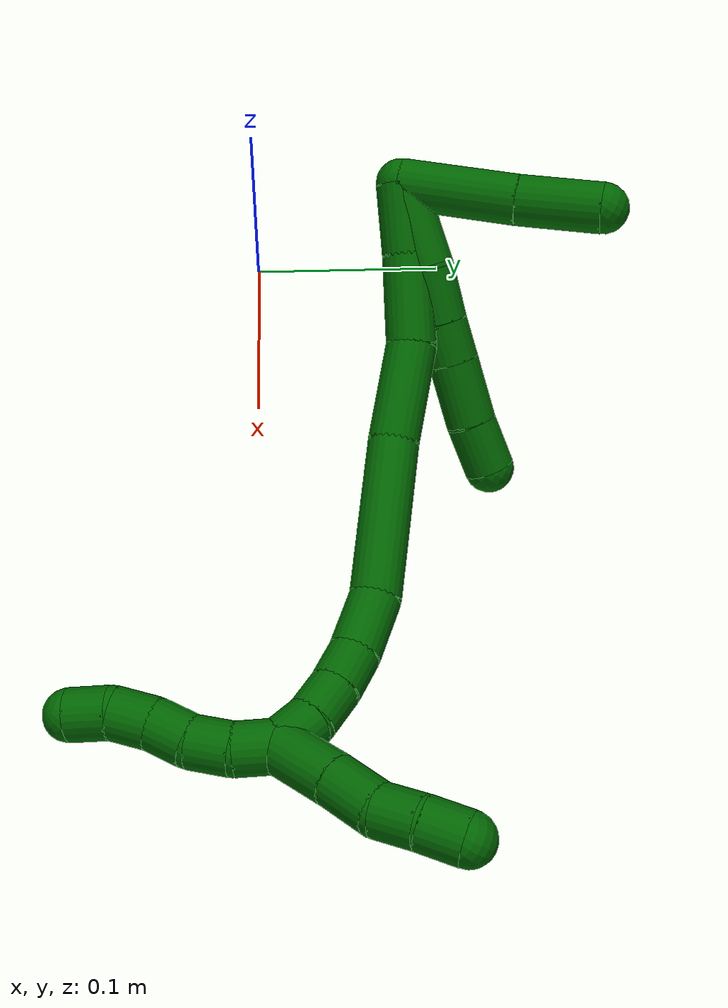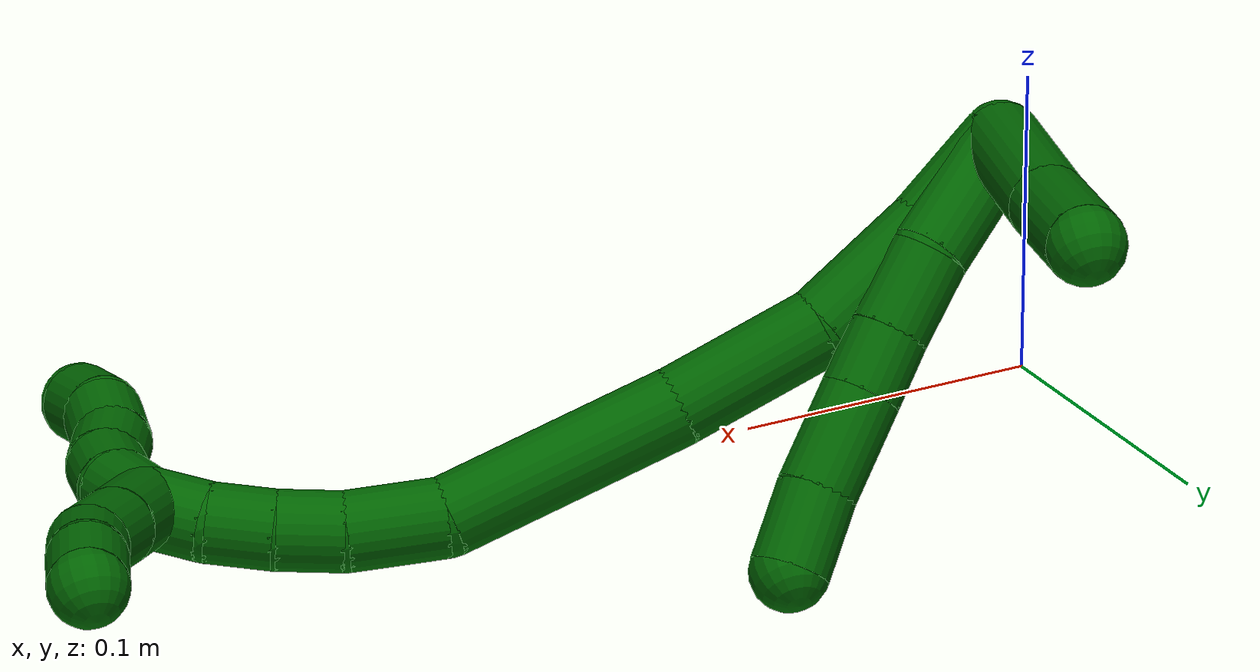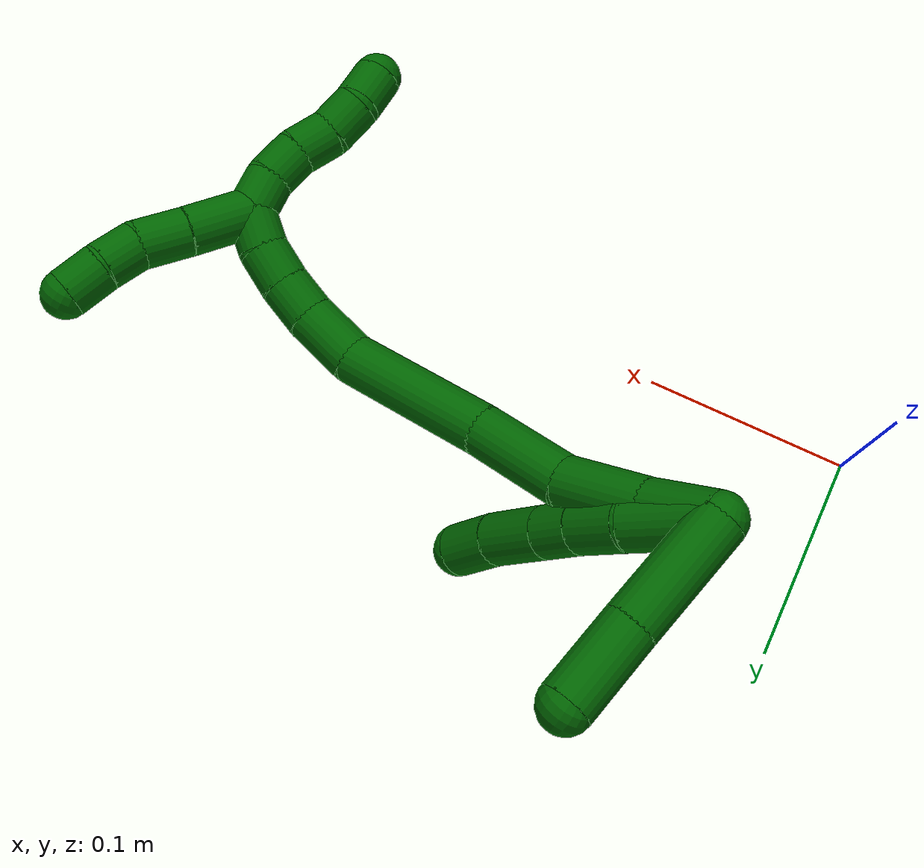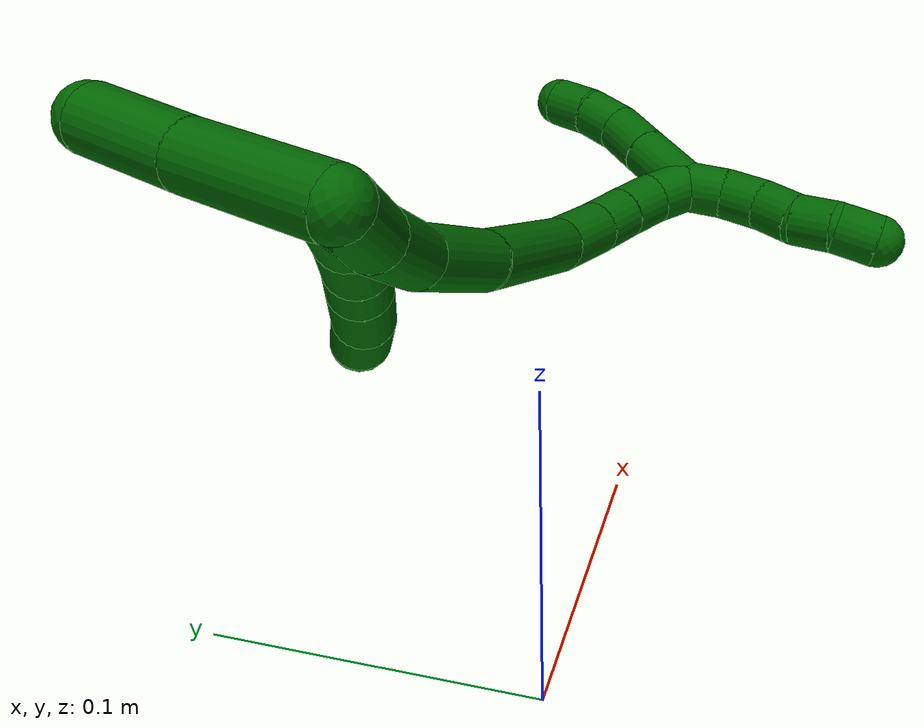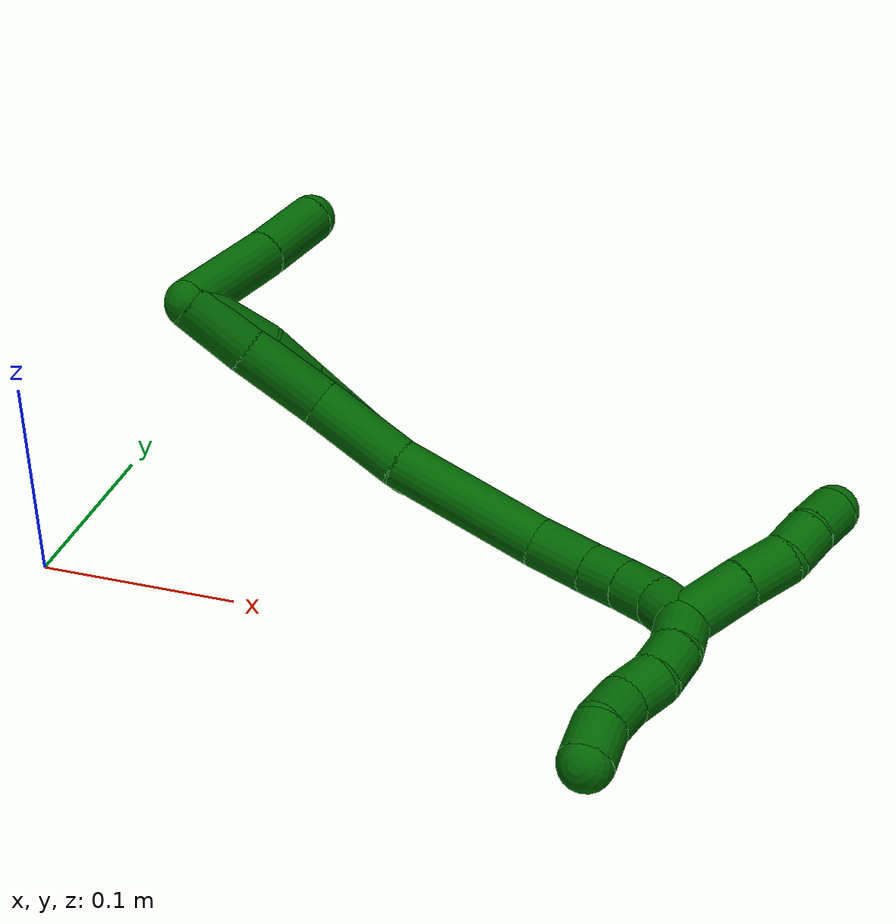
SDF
<sdf version="1.7">
 <world name="default">
  <model name="bin">
   <static>1</static>
   <link name="bottom">
    <collision name="collision-bottom">
     <pose>0 0 -0.01 0 -0 0</pose>
     <geometry><box><size>0.8 0.6 0.02</size></box></geometry>
     <surface>
      <friction><ode><mu>100</mu><mu2>100</mu2></ode></friction>
      <contact><collide_bitmask>65535</collide_bitmask></contact>
     </surface>
    </collision>
   </link>
   <link name="west_wall">
    <collision name="collision-west_wall">
     <pose>-0.41 0 0.1 0 -0 0</pose>
     <geometry><box><size>0.02 0.6 0.2</size></box></geometry>
     <surface>
      <friction><ode><mu>100</mu><mu2>100</mu2></ode></friction>
      <contact><collide_bitmask>65535</collide_bitmask></contact>
     </surface>
    </collision>
   </link>
   <link name="east_wall">
    <collision name="collision-east_wall">
     <pose>0.41 0 0.1 0 -0 0</pose>
     <geometry><box><size>0.02 0.6 0.2</size></box></geometry>
     <surface>
      <friction><ode><mu>100</mu><mu2>100</mu2></ode></friction>
      <contact><collide_bitmask>65535</collide_bitmask></contact>
     </surface>
    </collision>
   </link>
   <link name="south_wall">
    <collision name="collision-south_wall">
     <pose>0 -0.31 0.1 0 -0 0</pose>
     <geometry><box><size>0.8 0.02 0.2</size></box></geometry>
     <surface>
      <friction><ode><mu>100</mu><mu2>100</mu2></ode></friction>
      <contact><collide_bitmask>65535</collide_bitmask></contact>
     </surface>
    </collision>
   </link>
   <link name="north_wall">
    <collision name="collision-north_wall">
     <pose>0 0.31 0.1 0 -0 0</pose>
     <geometry><box><size>0.8 0.02 0.2</size></box></geometry>
     <surface>
      <friction><ode><mu>100</mu><mu2>100</mu2></ode></friction>
      <contact><collide_bitmask>65535</collide_bitmask></contact>
     </surface>
    </collision>
   </link>
  </model>
  <model name="6">
   <static>0</static>
   <link name="6">
    <collision name="collision-cylinder-e_1_2_8">
     <pose>0.015575 -0.00201 -0.015087 3.00917 0.796917 2.82914</pose>
     <geometry><cylinder><radius>0.0125</radius><length>0.043554</length></cylinder></geometry>
     <surface>
      <friction><ode><mu>1.16</mu><mu2>1.16</mu2><slip1>0</slip1><slip2>0</slip2></ode></friction>
      <contact><ode><kp>1e+06</kp><kd>1</kd><max_vel>0</max_vel><min_depth>0.001</min_depth></ode></contact>
     </surface>
    </collision>
    <visual name="visual-cylinder-e_1_2_8">
     <pose>0.015575 -0.00201 -0.015087 3.00917 0.796917 2.82914</pose>
     <geometry><cylinder><radius>0.0125</radius><length>0.043554</length></cylinder></geometry>
     <material><ambient>0 0.392157 0.003922 1</ambient></material>
    </visual>
    <collision name="collision-cylinder-e_2_8_9">
     <pose>0.040164 -0.007738 -0.03969 2.7691 0.722963 2.2169</pose>
     <geometry><cylinder><radius>0.0125</radius><length>0.02725</length></cylinder></geometry>
     <surface>
      <friction><ode><mu>1.16</mu><mu2>1.16</mu2><slip1>0</slip1><slip2>0</slip2></ode></friction>
      <contact><ode><kp>1e+06</kp><kd>1</kd><max_vel>0</max_vel><min_depth>0.001</min_depth></ode></contact>
     </surface>
    </collision>
    <visual name="visual-cylinder-e_2_8_9">
     <pose>0.040164 -0.007738 -0.03969 2.7691 0.722963 2.2169</pose>
     <geometry><cylinder><radius>0.0125</radius><length>0.02725</length></cylinder></geometry>
     <material><ambient>0 0.392157 0.003922 1</ambient></material>
    </visual>
    <collision name="collision-cylinder-e_3_9_10">
     <pose>0.055686 -0.01428 -0.056896 2.78964 0.671271 2.19876</pose>
     <geometry><cylinder><radius>0.0125</radius><length>0.020924</length></cylinder></geometry>
     <surface>
      <friction><ode><mu>1.16</mu><mu2>1.16</mu2><slip1>0</slip1><slip2>0</slip2></ode></friction>
      <contact><ode><kp>1e+06</kp><kd>1</kd><max_vel>0</max_vel><min_depth>0.001</min_depth></ode></contact>
     </surface>
    </collision>
    <visual name="visual-cylinder-e_3_9_10">
     <pose>0.055686 -0.01428 -0.056896 2.78964 0.671271 2.19876</pose>
     <geometry><cylinder><radius>0.0125</radius><length>0.020924</length></cylinder></geometry>
     <material><ambient>0 0.392157 0.003922 1</ambient></material>
    </visual>
    <collision name="collision-cylinder-e_4_10_11">
     <pose>0.072286 -0.021459 -0.07643 2.78925 0.674627 2.2022</pose>
     <geometry><cylinder><radius>0.0125</radius><length>0.032318</length></cylinder></geometry>
     <surface>
      <friction><ode><mu>1.16</mu><mu2>1.16</mu2><slip1>0</slip1><slip2>0</slip2></ode></friction>
      <contact><ode><kp>1e+06</kp><kd>1</kd><max_vel>0</max_vel><min_depth>0.001</min_depth></ode></contact>
     </surface>
    </collision>
    <visual name="visual-cylinder-e_4_10_11">
     <pose>0.072286 -0.021459 -0.07643 2.78925 0.674627 2.2022</pose>
     <geometry><cylinder><radius>0.0125</radius><length>0.032318</length></cylinder></geometry>
     <material><ambient>0 0.392157 0.003922 1</ambient></material>
    </visual>
    <collision name="collision-cylinder-e_5_11_6">
     <pose>0.089494 -0.029041 -0.098635 2.83967 0.58033 2.19923</pose>
     <geometry><cylinder><radius>0.0125</radius><length>0.025954</length></cylinder></geometry>
     <surface>
      <friction><ode><mu>1.16</mu><mu2>1.16</mu2><slip1>0</slip1><slip2>0</slip2></ode></friction>
      <contact><ode><kp>1e+06</kp><kd>1</kd><max_vel>0</max_vel><min_depth>0.001</min_depth></ode></contact>
     </surface>
    </collision>
    <visual name="visual-cylinder-e_5_11_6">
     <pose>0.089494 -0.029041 -0.098635 2.83967 0.58033 2.19923</pose>
     <geometry><cylinder><radius>0.0125</radius><length>0.025954</length></cylinder></geometry>
     <material><ambient>0 0.392157 0.003922 1</ambient></material>
    </visual>
    <collision name="collision-cylinder-e_1_2_12">
     <pose>-0.00155 0.017588 -0.02322 -2.49335 -0.053178 0.15799</pose>
     <geometry><cylinder><radius>0.0125</radius><length>0.05834</length></cylinder></geometry>
     <surface>
      <friction><ode><mu>1.16</mu><mu2>1.16</mu2><slip1>0</slip1><slip2>0</slip2></ode></friction>
      <contact><ode><kp>1e+06</kp><kd>1</kd><max_vel>0</max_vel><min_depth>0.001</min_depth></ode></contact>
     </surface>
    </collision>
    <visual name="visual-cylinder-e_1_2_12">
     <pose>-0.00155 0.017588 -0.02322 -2.49335 -0.053178 0.15799</pose>
     <geometry><cylinder><radius>0.0125</radius><length>0.05834</length></cylinder></geometry>
     <material><ambient>0 0.392157 0.003922 1</ambient></material>
    </visual>
    <collision name="collision-cylinder-e_2_12_5">
     <pose>-0.00465 0.048464 -0.062406 -2.44747 -0.074453 0.205213</pose>
     <geometry><cylinder><radius>0.0125</radius><length>0.04166</length></cylinder></geometry>
     <surface>
      <friction><ode><mu>1.16</mu><mu2>1.16</mu2><slip1>0</slip1><slip2>0</slip2></ode></friction>
      <contact><ode><kp>1e+06</kp><kd>1</kd><max_vel>0</max_vel><min_depth>0.001</min_depth></ode></contact>
     </surface>
    </collision>
    <visual name="visual-cylinder-e_2_12_5">
     <pose>-0.00465 0.048464 -0.062406 -2.44747 -0.074453 0.205213</pose>
     <geometry><cylinder><radius>0.0125</radius><length>0.04166</length></cylinder></geometry>
     <material><ambient>0 0.392157 0.003922 1</ambient></material>
    </visual>
    <collision name="collision-cylinder-e_1_2_13">
     <pose>0.014552 -0.003895 -0.009472 2.75148 0.957542 2.41419</pose>
     <geometry><cylinder><radius>0.0125</radius><length>0.035589</length></cylinder></geometry>
     <surface>
      <friction><ode><mu>1.16</mu><mu2>1.16</mu2><slip1>0</slip1><slip2>0</slip2></ode></friction>
      <contact><ode><kp>1e+06</kp><kd>1</kd><max_vel>0</max_vel><min_depth>0.001</min_depth></ode></contact>
     </surface>
    </collision>
    <visual name="visual-cylinder-e_1_2_13">
     <pose>0.014552 -0.003895 -0.009472 2.75148 0.957542 2.41419</pose>
     <geometry><cylinder><radius>0.0125</radius><length>0.035589</length></cylinder></geometry>
     <material><ambient>0 0.392157 0.003922 1</ambient></material>
    </visual>
    <collision name="collision-cylinder-e_2_13_14">
     <pose>0.048456 -0.011371 -0.02913 2.80346 1.06188 2.57577</pose>
     <geometry><cylinder><radius>0.0125</radius><length>0.044322</length></cylinder></geometry>
     <surface>
      <friction><ode><mu>1.16</mu><mu2>1.16</mu2><slip1>0</slip1><slip2>0</slip2></ode></friction>
      <contact><ode><kp>1e+06</kp><kd>1</kd><max_vel>0</max_vel><min_depth>0.001</min_depth></ode></contact>
     </surface>
    </collision>
    <visual name="visual-cylinder-e_2_13_14">
     <pose>0.048456 -0.011371 -0.02913 2.80346 1.06188 2.57577</pose>
     <geometry><cylinder><radius>0.0125</radius><length>0.044322</length></cylinder></geometry>
     <material><ambient>0 0.392157 0.003922 1</ambient></material>
    </visual>
    <collision name="collision-cylinder-e_3_14_15">
     <pose>0.091815 -0.01869 -0.044592 2.52525 1.30772 2.3542</pose>
     <geometry><cylinder><radius>0.0125</radius><length>0.049723</length></cylinder></geometry>
     <surface>
      <friction><ode><mu>1.16</mu><mu2>1.16</mu2><slip1>0</slip1><slip2>0</slip2></ode></friction>
      <contact><ode><kp>1e+06</kp><kd>1</kd><max_vel>0</max_vel><min_depth>0.001</min_depth></ode></contact>
     </surface>
    </collision>
    <visual name="visual-cylinder-e_3_14_15">
     <pose>0.091815 -0.01869 -0.044592 2.52525 1.30772 2.3542</pose>
     <geometry><cylinder><radius>0.0125</radius><length>0.049723</length></cylinder></geometry>
     <material><ambient>0 0.392157 0.003922 1</ambient></material>
    </visual>
    <collision name="collision-cylinder-e_4_15_16">
     <pose>0.153977 -0.023191 -0.058351 3.05191 1.35117 3.02973</pose>
     <geometry><cylinder><radius>0.0125</radius><length>0.07819</length></cylinder></geometry>
     <surface>
      <friction><ode><mu>1.16</mu><mu2>1.16</mu2><slip1>0</slip1><slip2>0</slip2></ode></friction>
      <contact><ode><kp>1e+06</kp><kd>1</kd><max_vel>0</max_vel><min_depth>0.001</min_depth></ode></contact>
     </surface>
    </collision>
    <visual name="visual-cylinder-e_4_15_16">
     <pose>0.153977 -0.023191 -0.058351 3.05191 1.35117 3.02973</pose>
     <geometry><cylinder><radius>0.0125</radius><length>0.07819</length></cylinder></geometry>
     <material><ambient>0 0.392157 0.003922 1</ambient></material>
    </visual>
    <collision name="collision-cylinder-e_5_16_17">
     <pose>0.207416 -0.022905 -0.065604 -0.705741 1.46546 -0.64002</pose>
     <geometry><cylinder><radius>0.0125</radius><length>0.030736</length></cylinder></geometry>
     <surface>
      <friction><ode><mu>1.16</mu><mu2>1.16</mu2><slip1>0</slip1><slip2>0</slip2></ode></friction>
      <contact><ode><kp>1e+06</kp><kd>1</kd><max_vel>0</max_vel><min_depth>0.001</min_depth></ode></contact>
     </surface>
    </collision>
    <visual name="visual-cylinder-e_5_16_17">
     <pose>0.207416 -0.022905 -0.065604 -0.705741 1.46546 -0.64002</pose>
     <geometry><cylinder><radius>0.0125</radius><length>0.030736</length></cylinder></geometry>
     <material><ambient>0 0.392157 0.003922 1</ambient></material>
    </visual>
    <collision name="collision-cylinder-e_6_17_18">
     <pose>0.232732 -0.02068 -0.061856 -0.437269 1.30051 -0.33483</pose>
     <geometry><cylinder><radius>0.0125</radius><length>0.020823</length></cylinder></geometry>
     <surface>
      <friction><ode><mu>1.16</mu><mu2>1.16</mu2><slip1>0</slip1><slip2>0</slip2></ode></friction>
      <contact><ode><kp>1e+06</kp><kd>1</kd><max_vel>0</max_vel><min_depth>0.001</min_depth></ode></contact>
     </surface>
    </collision>
    <visual name="visual-cylinder-e_6_17_18">
     <pose>0.232732 -0.02068 -0.061856 -0.437269 1.30051 -0.33483</pose>
     <geometry><cylinder><radius>0.0125</radius><length>0.020823</length></cylinder></geometry>
     <material><ambient>0 0.392157 0.003922 1</ambient></material>
    </visual>
    <collision name="collision-cylinder-e_7_18_19">
     <pose>0.252347 -0.018586 -0.055714 -0.24787 1.1989 -0.169839</pose>
     <geometry><cylinder><radius>0.0125</radius><length>0.02057</length></cylinder></geometry>
     <surface>
      <friction><ode><mu>1.16</mu><mu2>1.16</mu2><slip1>0</slip1><slip2>0</slip2></ode></friction>
      <contact><ode><kp>1e+06</kp><kd>1</kd><max_vel>0</max_vel><min_depth>0.001</min_depth></ode></contact>
     </surface>
    </collision>
    <visual name="visual-cylinder-e_7_18_19">
     <pose>0.252347 -0.018586 -0.055714 -0.24787 1.1989 -0.169839</pose>
     <geometry><cylinder><radius>0.0125</radius><length>0.02057</length></cylinder></geometry>
     <material><ambient>0 0.392157 0.003922 1</ambient></material>
    </visual>
    <collision name="collision-cylinder-e_8_19_1">
     <pose>0.270395 -0.017831 -0.046726 0.030242 1.00574 0.016635</pose>
     <geometry><cylinder><radius>0.0125</radius><length>0.020048</length></cylinder></geometry>
     <surface>
      <friction><ode><mu>1.16</mu><mu2>1.16</mu2><slip1>0</slip1><slip2>0</slip2></ode></friction>
      <contact><ode><kp>1e+06</kp><kd>1</kd><max_vel>0</max_vel><min_depth>0.001</min_depth></ode></contact>
     </surface>
    </collision>
    <visual name="visual-cylinder-e_8_19_1">
     <pose>0.270395 -0.017831 -0.046726 0.030242 1.00574 0.016635</pose>
     <geometry><cylinder><radius>0.0125</radius><length>0.020048</length></cylinder></geometry>
     <material><ambient>0 0.392157 0.003922 1</ambient></material>
    </visual>
    <collision name="collision-cylinder-e_1_1_20">
     <pose>0.282278 -0.023518 -0.033758 0.62836 0.348795 0.114377</pose>
     <geometry><cylinder><radius>0.0125</radius><length>0.02</length></cylinder></geometry>
     <surface>
      <friction><ode><mu>1.16</mu><mu2>1.16</mu2><slip1>0</slip1><slip2>0</slip2></ode></friction>
      <contact><ode><kp>1e+06</kp><kd>1</kd><max_vel>0</max_vel><min_depth>0.001</min_depth></ode></contact>
     </surface>
    </collision>
    <visual name="visual-cylinder-e_1_1_20">
     <pose>0.282278 -0.023518 -0.033758 0.62836 0.348795 0.114377</pose>
     <geometry><cylinder><radius>0.0125</radius><length>0.02</length></cylinder></geometry>
     <material><ambient>0 0.392157 0.003922 1</ambient></material>
    </visual>
    <collision name="collision-cylinder-e_2_20_21">
     <pose>0.286452 -0.035315 -0.018405 0.680397 0.075729 0.026816</pose>
     <geometry><cylinder><radius>0.0125</radius><length>0.02</length></cylinder></geometry>
     <surface>
      <friction><ode><mu>1.16</mu><mu2>1.16</mu2><slip1>0</slip1><slip2>0</slip2></ode></friction>
      <contact><ode><kp>1e+06</kp><kd>1</kd><max_vel>0</max_vel><min_depth>0.001</min_depth></ode></contact>
     </surface>
    </collision>
    <visual name="visual-cylinder-e_2_20_21">
     <pose>0.286452 -0.035315 -0.018405 0.680397 0.075729 0.026816</pose>
     <geometry><cylinder><radius>0.0125</radius><length>0.02</length></cylinder></geometry>
     <material><ambient>0 0.392157 0.003922 1</ambient></material>
    </visual>
    <collision name="collision-cylinder-e_3_21_22">
     <pose>0.285283 -0.047992 -0.003219 0.711059 -0.193822 -0.072162</pose>
     <geometry><cylinder><radius>0.0125</radius><length>0.02</length></cylinder></geometry>
     <surface>
      <friction><ode><mu>1.16</mu><mu2>1.16</mu2><slip1>0</slip1><slip2>0</slip2></ode></friction>
      <contact><ode><kp>1e+06</kp><kd>1</kd><max_vel>0</max_vel><min_depth>0.001</min_depth></ode></contact>
     </surface>
    </collision>
    <visual name="visual-cylinder-e_3_21_22">
     <pose>0.285283 -0.047992 -0.003219 0.711059 -0.193822 -0.072162</pose>
     <geometry><cylinder><radius>0.0125</radius><length>0.02</length></cylinder></geometry>
     <material><ambient>0 0.392157 0.003922 1</ambient></material>
    </visual>
    <collision name="collision-cylinder-e_4_22_23">
     <pose>0.283638 -0.059712 0.012682 0.560646 0.028137 0.008101</pose>
     <geometry><cylinder><radius>0.0125</radius><length>0.02</length></cylinder></geometry>
     <surface>
      <friction><ode><mu>1.16</mu><mu2>1.16</mu2><slip1>0</slip1><slip2>0</slip2></ode></friction>
      <contact><ode><kp>1e+06</kp><kd>1</kd><max_vel>0</max_vel><min_depth>0.001</min_depth></ode></contact>
     </surface>
    </collision>
    <visual name="visual-cylinder-e_4_22_23">
     <pose>0.283638 -0.059712 0.012682 0.560646 0.028137 0.008101</pose>
     <geometry><cylinder><radius>0.0125</radius><length>0.02</length></cylinder></geometry>
     <material><ambient>0 0.392157 0.003922 1</ambient></material>
    </visual>
    <collision name="collision-cylinder-e_5_23_4">
     <pose>0.286661 -0.071678 0.028093 0.763764 0.277717 0.112135</pose>
     <geometry><cylinder><radius>0.0125</radius><length>0.02</length></cylinder></geometry>
     <surface>
      <friction><ode><mu>1.16</mu><mu2>1.16</mu2><slip1>0</slip1><slip2>0</slip2></ode></friction>
      <contact><ode><kp>1e+06</kp><kd>1</kd><max_vel>0</max_vel><min_depth>0.001</min_depth></ode></contact>
     </surface>
    </collision>
    <visual name="visual-cylinder-e_5_23_4">
     <pose>0.286661 -0.071678 0.028093 0.763764 0.277717 0.112135</pose>
     <geometry><cylinder><radius>0.0125</radius><length>0.02</length></cylinder></geometry>
     <material><ambient>0 0.392157 0.003922 1</ambient></material>
    </visual>
    <collision name="collision-cylinder-e_1_1_24">
     <pose>0.284174 -0.005239 -0.050876 -2.21172 0.322277 -0.626751</pose>
     <geometry><cylinder><radius>0.0125</radius><length>0.033554</length></cylinder></geometry>
     <surface>
      <friction><ode><mu>1.16</mu><mu2>1.16</mu2><slip1>0</slip1><slip2>0</slip2></ode></friction>
      <contact><ode><kp>1e+06</kp><kd>1</kd><max_vel>0</max_vel><min_depth>0.001</min_depth></ode></contact>
     </surface>
    </collision>
    <visual name="visual-cylinder-e_1_1_24">
     <pose>0.284174 -0.005239 -0.050876 -2.21172 0.322277 -0.626751</pose>
     <geometry><cylinder><radius>0.0125</radius><length>0.033554</length></cylinder></geometry>
     <material><ambient>0 0.392157 0.003922 1</ambient></material>
    </visual>
    <collision name="collision-cylinder-e_2_24_25">
     <pose>0.294037 0.016894 -0.067575 -2.22446 0.367624 -0.720335</pose>
     <geometry><cylinder><radius>0.0125</radius><length>0.025316</length></cylinder></geometry>
     <surface>
      <friction><ode><mu>1.16</mu><mu2>1.16</mu2><slip1>0</slip1><slip2>0</slip2></ode></friction>
      <contact><ode><kp>1e+06</kp><kd>1</kd><max_vel>0</max_vel><min_depth>0.001</min_depth></ode></contact>
     </surface>
    </collision>
    <visual name="visual-cylinder-e_2_24_25">
     <pose>0.294037 0.016894 -0.067575 -2.22446 0.367624 -0.720335</pose>
     <geometry><cylinder><radius>0.0125</radius><length>0.025316</length></cylinder></geometry>
     <material><ambient>0 0.392157 0.003922 1</ambient></material>
    </visual>
    <collision name="collision-cylinder-e_3_25_26">
     <pose>0.299278 0.033928 -0.081504 -2.29306 0.067697 -0.14965</pose>
     <geometry><cylinder><radius>0.0125</radius><length>0.020456</length></cylinder></geometry>
     <surface>
      <friction><ode><mu>1.16</mu><mu2>1.16</mu2><slip1>0</slip1><slip2>0</slip2></ode></friction>
      <contact><ode><kp>1e+06</kp><kd>1</kd><max_vel>0</max_vel><min_depth>0.001</min_depth></ode></contact>
     </surface>
    </collision>
    <visual name="visual-cylinder-e_3_25_26">
     <pose>0.299278 0.033928 -0.081504 -2.29306 0.067697 -0.14965</pose>
     <geometry><cylinder><radius>0.0125</radius><length>0.020456</length></cylinder></geometry>
     <material><ambient>0 0.392157 0.003922 1</ambient></material>
    </visual>
    <collision name="collision-cylinder-e_4_26_3">
     <pose>0.300796 0.048031 -0.096288 -2.46566 0.079966 -0.226677</pose>
     <geometry><cylinder><radius>0.0125</radius><length>0.020673</length></cylinder></geometry>
     <surface>
      <friction><ode><mu>1.16</mu><mu2>1.16</mu2><slip1>0</slip1><slip2>0</slip2></ode></friction>
      <contact><ode><kp>1e+06</kp><kd>1</kd><max_vel>0</max_vel><min_depth>0.001</min_depth></ode></contact>
     </surface>
    </collision>
    <visual name="visual-cylinder-e_4_26_3">
     <pose>0.300796 0.048031 -0.096288 -2.46566 0.079966 -0.226677</pose>
     <geometry><cylinder><radius>0.0125</radius><length>0.020673</length></cylinder></geometry>
     <material><ambient>0 0.392157 0.003922 1</ambient></material>
    </visual>
    <collision name="collision-sphere-3">
     <pose>0.301622 0.054477 -0.104327 0 -0 0</pose>
     <geometry><sphere><radius>0.0125</radius></sphere></geometry>
     <surface>
      <friction><ode><mu>1.16</mu><mu2>1.16</mu2><slip1>0</slip1><slip2>0</slip2></ode></friction>
      <contact><ode><kp>1e+06</kp><kd>1</kd><max_vel>0</max_vel><min_depth>0.001</min_depth></ode></contact>
     </surface>
    </collision>
    <visual name="visual-sphere-3">
     <pose>0.301622 0.054477 -0.104327 0 -0 0</pose>
     <geometry><sphere><radius>0.0125</radius></sphere></geometry>
     <material><ambient>0 0.392157 0.003922 1</ambient></material>
    </visual>
    <collision name="collision-sphere-26">
     <pose>0.29997 0.041585 -0.08825 0 -0 0</pose>
     <geometry><sphere><radius>0.0125</radius></sphere></geometry>
     <surface>
      <friction><ode><mu>1.16</mu><mu2>1.16</mu2><slip1>0</slip1><slip2>0</slip2></ode></friction>
      <contact><ode><kp>1e+06</kp><kd>1</kd><max_vel>0</max_vel><min_depth>0.001</min_depth></ode></contact>
     </surface>
    </collision>
    <visual name="visual-sphere-26">
     <pose>0.29997 0.041585 -0.08825 0 -0 0</pose>
     <geometry><sphere><radius>0.0125</radius></sphere></geometry>
     <material><ambient>0 0.392157 0.003922 1</ambient></material>
    </visual>
    <collision name="collision-sphere-25">
     <pose>0.298587 0.026271 -0.074758 0 -0 0</pose>
     <geometry><sphere><radius>0.0125</radius></sphere></geometry>
     <surface>
      <friction><ode><mu>1.16</mu><mu2>1.16</mu2><slip1>0</slip1><slip2>0</slip2></ode></friction>
      <contact><ode><kp>1e+06</kp><kd>1</kd><max_vel>0</max_vel><min_depth>0.001</min_depth></ode></contact>
     </surface>
    </collision>
    <visual name="visual-sphere-25">
     <pose>0.298587 0.026271 -0.074758 0 -0 0</pose>
     <geometry><sphere><radius>0.0125</radius></sphere></geometry>
     <material><ambient>0 0.392157 0.003922 1</ambient></material>
    </visual>
    <collision name="collision-sphere-24">
     <pose>0.289488 0.007517 -0.060392 0 -0 0</pose>
     <geometry><sphere><radius>0.0125</radius></sphere></geometry>
     <surface>
      <friction><ode><mu>1.16</mu><mu2>1.16</mu2><slip1>0</slip1><slip2>0</slip2></ode></friction>
      <contact><ode><kp>1e+06</kp><kd>1</kd><max_vel>0</max_vel><min_depth>0.001</min_depth></ode></contact>
     </surface>
    </collision>
    <visual name="visual-sphere-24">
     <pose>0.289488 0.007517 -0.060392 0 -0 0</pose>
     <geometry><sphere><radius>0.0125</radius></sphere></geometry>
     <material><ambient>0 0.392157 0.003922 1</ambient></material>
    </visual>
    <collision name="collision-sphere-4">
     <pose>0.289402 -0.07833 0.035039 0 -0 0</pose>
     <geometry><sphere><radius>0.0125</radius></sphere></geometry>
     <surface>
      <friction><ode><mu>1.16</mu><mu2>1.16</mu2><slip1>0</slip1><slip2>0</slip2></ode></friction>
      <contact><ode><kp>1e+06</kp><kd>1</kd><max_vel>0</max_vel><min_depth>0.001</min_depth></ode></contact>
     </surface>
    </collision>
    <visual name="visual-sphere-4">
     <pose>0.289402 -0.07833 0.035039 0 -0 0</pose>
     <geometry><sphere><radius>0.0125</radius></sphere></geometry>
     <material><ambient>0 0.392157 0.003922 1</ambient></material>
    </visual>
    <collision name="collision-sphere-23">
     <pose>0.283919 -0.065027 0.021148 0 -0 0</pose>
     <geometry><sphere><radius>0.0125</radius></sphere></geometry>
     <surface>
      <friction><ode><mu>1.16</mu><mu2>1.16</mu2><slip1>0</slip1><slip2>0</slip2></ode></friction>
      <contact><ode><kp>1e+06</kp><kd>1</kd><max_vel>0</max_vel><min_depth>0.001</min_depth></ode></contact>
     </surface>
    </collision>
    <visual name="visual-sphere-23">
     <pose>0.283919 -0.065027 0.021148 0 -0 0</pose>
     <geometry><sphere><radius>0.0125</radius></sphere></geometry>
     <material><ambient>0 0.392157 0.003922 1</ambient></material>
    </visual>
    <collision name="collision-sphere-22">
     <pose>0.283357 -0.054396 0.004216 0 -0 0</pose>
     <geometry><sphere><radius>0.0125</radius></sphere></geometry>
     <surface>
      <friction><ode><mu>1.16</mu><mu2>1.16</mu2><slip1>0</slip1><slip2>0</slip2></ode></friction>
      <contact><ode><kp>1e+06</kp><kd>1</kd><max_vel>0</max_vel><min_depth>0.001</min_depth></ode></contact>
     </surface>
    </collision>
    <visual name="visual-sphere-22">
     <pose>0.283357 -0.054396 0.004216 0 -0 0</pose>
     <geometry><sphere><radius>0.0125</radius></sphere></geometry>
     <material><ambient>0 0.392157 0.003922 1</ambient></material>
    </visual>
    <collision name="collision-sphere-21">
     <pose>0.287209 -0.041588 -0.010654 0 -0 0</pose>
     <geometry><sphere><radius>0.0125</radius></sphere></geometry>
     <surface>
      <friction><ode><mu>1.16</mu><mu2>1.16</mu2><slip1>0</slip1><slip2>0</slip2></ode></friction>
      <contact><ode><kp>1e+06</kp><kd>1</kd><max_vel>0</max_vel><min_depth>0.001</min_depth></ode></contact>
     </surface>
    </collision>
    <visual name="visual-sphere-21">
     <pose>0.287209 -0.041588 -0.010654 0 -0 0</pose>
     <geometry><sphere><radius>0.0125</radius></sphere></geometry>
     <material><ambient>0 0.392157 0.003922 1</ambient></material>
    </visual>
    <collision name="collision-sphere-20">
     <pose>0.285696 -0.029042 -0.026156 0 -0 0</pose>
     <geometry><sphere><radius>0.0125</radius></sphere></geometry>
     <surface>
      <friction><ode><mu>1.16</mu><mu2>1.16</mu2><slip1>0</slip1><slip2>0</slip2></ode></friction>
      <contact><ode><kp>1e+06</kp><kd>1</kd><max_vel>0</max_vel><min_depth>0.001</min_depth></ode></contact>
     </surface>
    </collision>
    <visual name="visual-sphere-20">
     <pose>0.285696 -0.029042 -0.026156 0 -0 0</pose>
     <geometry><sphere><radius>0.0125</radius></sphere></geometry>
     <material><ambient>0 0.392157 0.003922 1</ambient></material>
    </visual>
    <collision name="collision-sphere-6">
     <pose>0.09661 -0.032268 -0.108997 0 -0 0</pose>
     <geometry><sphere><radius>0.0125</radius></sphere></geometry>
     <surface>
      <friction><ode><mu>1.16</mu><mu2>1.16</mu2><slip1>0</slip1><slip2>0</slip2></ode></friction>
      <contact><ode><kp>1e+06</kp><kd>1</kd><max_vel>0</max_vel><min_depth>0.001</min_depth></ode></contact>
     </surface>
    </collision>
    <visual name="visual-sphere-6">
     <pose>0.09661 -0.032268 -0.108997 0 -0 0</pose>
     <geometry><sphere><radius>0.0125</radius></sphere></geometry>
     <material><ambient>0 0.392157 0.003922 1</ambient></material>
    </visual>
    <collision name="collision-sphere-11">
     <pose>0.082379 -0.025814 -0.088274 0 -0 0</pose>
     <geometry><sphere><radius>0.0125</radius></sphere></geometry>
     <surface>
      <friction><ode><mu>1.16</mu><mu2>1.16</mu2><slip1>0</slip1><slip2>0</slip2></ode></friction>
      <contact><ode><kp>1e+06</kp><kd>1</kd><max_vel>0</max_vel><min_depth>0.001</min_depth></ode></contact>
     </surface>
    </collision>
    <visual name="visual-sphere-11">
     <pose>0.082379 -0.025814 -0.088274 0 -0 0</pose>
     <geometry><sphere><radius>0.0125</radius></sphere></geometry>
     <material><ambient>0 0.392157 0.003922 1</ambient></material>
    </visual>
    <collision name="collision-sphere-10">
     <pose>0.062193 -0.017104 -0.064586 0 -0 0</pose>
     <geometry><sphere><radius>0.0125</radius></sphere></geometry>
     <surface>
      <friction><ode><mu>1.16</mu><mu2>1.16</mu2><slip1>0</slip1><slip2>0</slip2></ode></friction>
      <contact><ode><kp>1e+06</kp><kd>1</kd><max_vel>0</max_vel><min_depth>0.001</min_depth></ode></contact>
     </surface>
    </collision>
    <visual name="visual-sphere-10">
     <pose>0.062193 -0.017104 -0.064586 0 -0 0</pose>
     <geometry><sphere><radius>0.0125</radius></sphere></geometry>
     <material><ambient>0 0.392157 0.003922 1</ambient></material>
    </visual>
    <collision name="collision-sphere-9">
     <pose>0.049179 -0.011456 -0.049206 0 -0 0</pose>
     <geometry><sphere><radius>0.0125</radius></sphere></geometry>
     <surface>
      <friction><ode><mu>1.16</mu><mu2>1.16</mu2><slip1>0</slip1><slip2>0</slip2></ode></friction>
      <contact><ode><kp>1e+06</kp><kd>1</kd><max_vel>0</max_vel><min_depth>0.001</min_depth></ode></contact>
     </surface>
    </collision>
    <visual name="visual-sphere-9">
     <pose>0.049179 -0.011456 -0.049206 0 -0 0</pose>
     <geometry><sphere><radius>0.0125</radius></sphere></geometry>
     <material><ambient>0 0.392157 0.003922 1</ambient></material>
    </visual>
    <collision name="collision-sphere-2">
     <geometry><sphere><radius>0.0125</radius></sphere></geometry>
     <surface>
      <friction><ode><mu>1.16</mu><mu2>1.16</mu2><slip1>0</slip1><slip2>0</slip2></ode></friction>
      <contact><ode><kp>1e+06</kp><kd>1</kd><max_vel>0</max_vel><min_depth>0.001</min_depth></ode></contact>
     </surface>
    </collision>
    <visual name="visual-sphere-2">
     <geometry><sphere><radius>0.0125</radius></sphere></geometry>
     <material><ambient>0 0.392157 0.003922 1</ambient></material>
    </visual>
    <collision name="collision-sphere-19">
     <pose>0.261929 -0.017669 -0.052091 0 -0 0</pose>
     <geometry><sphere><radius>0.0125</radius></sphere></geometry>
     <surface>
      <friction><ode><mu>1.16</mu><mu2>1.16</mu2><slip1>0</slip1><slip2>0</slip2></ode></friction>
      <contact><ode><kp>1e+06</kp><kd>1</kd><max_vel>0</max_vel><min_depth>0.001</min_depth></ode></contact>
     </surface>
    </collision>
    <visual name="visual-sphere-19">
     <pose>0.261929 -0.017669 -0.052091 0 -0 0</pose>
     <geometry><sphere><radius>0.0125</radius></sphere></geometry>
     <material><ambient>0 0.392157 0.003922 1</ambient></material>
    </visual>
    <collision name="collision-sphere-8">
     <pose>0.03115 -0.004019 -0.030174 0 -0 0</pose>
     <geometry><sphere><radius>0.0125</radius></sphere></geometry>
     <surface>
      <friction><ode><mu>1.16</mu><mu2>1.16</mu2><slip1>0</slip1><slip2>0</slip2></ode></friction>
      <contact><ode><kp>1e+06</kp><kd>1</kd><max_vel>0</max_vel><min_depth>0.001</min_depth></ode></contact>
     </surface>
    </collision>
    <visual name="visual-sphere-8">
     <pose>0.03115 -0.004019 -0.030174 0 -0 0</pose>
     <geometry><sphere><radius>0.0125</radius></sphere></geometry>
     <material><ambient>0 0.392157 0.003922 1</ambient></material>
    </visual>
    <collision name="collision-sphere-12">
     <pose>-0.003101 0.035175 -0.04644 0 -0 0</pose>
     <geometry><sphere><radius>0.0125</radius></sphere></geometry>
     <surface>
      <friction><ode><mu>1.16</mu><mu2>1.16</mu2><slip1>0</slip1><slip2>0</slip2></ode></friction>
      <contact><ode><kp>1e+06</kp><kd>1</kd><max_vel>0</max_vel><min_depth>0.001</min_depth></ode></contact>
     </surface>
    </collision>
    <visual name="visual-sphere-12">
     <pose>-0.003101 0.035175 -0.04644 0 -0 0</pose>
     <geometry><sphere><radius>0.0125</radius></sphere></geometry>
     <material><ambient>0 0.392157 0.003922 1</ambient></material>
    </visual>
    <collision name="collision-sphere-5">
     <pose>-0.0062 0.061752 -0.078371 0 -0 0</pose>
     <geometry><sphere><radius>0.0125</radius></sphere></geometry>
     <surface>
      <friction><ode><mu>1.16</mu><mu2>1.16</mu2><slip1>0</slip1><slip2>0</slip2></ode></friction>
      <contact><ode><kp>1e+06</kp><kd>1</kd><max_vel>0</max_vel><min_depth>0.001</min_depth></ode></contact>
     </surface>
    </collision>
    <visual name="visual-sphere-5">
     <pose>-0.0062 0.061752 -0.078371 0 -0 0</pose>
     <geometry><sphere><radius>0.0125</radius></sphere></geometry>
     <material><ambient>0 0.392157 0.003922 1</ambient></material>
    </visual>
    <collision name="collision-sphere-13">
     <pose>0.029104 -0.007789 -0.018944 0 -0 0</pose>
     <geometry><sphere><radius>0.0125</radius></sphere></geometry>
     <surface>
      <friction><ode><mu>1.16</mu><mu2>1.16</mu2><slip1>0</slip1><slip2>0</slip2></ode></friction>
      <contact><ode><kp>1e+06</kp><kd>1</kd><max_vel>0</max_vel><min_depth>0.001</min_depth></ode></contact>
     </surface>
    </collision>
    <visual name="visual-sphere-13">
     <pose>0.029104 -0.007789 -0.018944 0 -0 0</pose>
     <geometry><sphere><radius>0.0125</radius></sphere></geometry>
     <material><ambient>0 0.392157 0.003922 1</ambient></material>
    </visual>
    <collision name="collision-sphere-14">
     <pose>0.067809 -0.014953 -0.039316 0 -0 0</pose>
     <geometry><sphere><radius>0.0125</radius></sphere></geometry>
     <surface>
      <friction><ode><mu>1.16</mu><mu2>1.16</mu2><slip1>0</slip1><slip2>0</slip2></ode></friction>
      <contact><ode><kp>1e+06</kp><kd>1</kd><max_vel>0</max_vel><min_depth>0.001</min_depth></ode></contact>
     </surface>
    </collision>
    <visual name="visual-sphere-14">
     <pose>0.067809 -0.014953 -0.039316 0 -0 0</pose>
     <geometry><sphere><radius>0.0125</radius></sphere></geometry>
     <material><ambient>0 0.392157 0.003922 1</ambient></material>
    </visual>
    <collision name="collision-sphere-15">
     <pose>0.115821 -0.022428 -0.049867 0 -0 0</pose>
     <geometry><sphere><radius>0.0125</radius></sphere></geometry>
     <surface>
      <friction><ode><mu>1.16</mu><mu2>1.16</mu2><slip1>0</slip1><slip2>0</slip2></ode></friction>
      <contact><ode><kp>1e+06</kp><kd>1</kd><max_vel>0</max_vel><min_depth>0.001</min_depth></ode></contact>
     </surface>
    </collision>
    <visual name="visual-sphere-15">
     <pose>0.115821 -0.022428 -0.049867 0 -0 0</pose>
     <geometry><sphere><radius>0.0125</radius></sphere></geometry>
     <material><ambient>0 0.392157 0.003922 1</ambient></material>
    </visual>
    <collision name="collision-sphere-16">
     <pose>0.192133 -0.023953 -0.066834 0 -0 0</pose>
     <geometry><sphere><radius>0.0125</radius></sphere></geometry>
     <surface>
      <friction><ode><mu>1.16</mu><mu2>1.16</mu2><slip1>0</slip1><slip2>0</slip2></ode></friction>
      <contact><ode><kp>1e+06</kp><kd>1</kd><max_vel>0</max_vel><min_depth>0.001</min_depth></ode></contact>
     </surface>
    </collision>
    <visual name="visual-sphere-16">
     <pose>0.192133 -0.023953 -0.066834 0 -0 0</pose>
     <geometry><sphere><radius>0.0125</radius></sphere></geometry>
     <material><ambient>0 0.392157 0.003922 1</ambient></material>
    </visual>
    <collision name="collision-sphere-17">
     <pose>0.222699 -0.021857 -0.064374 0 -0 0</pose>
     <geometry><sphere><radius>0.0125</radius></sphere></geometry>
     <surface>
      <friction><ode><mu>1.16</mu><mu2>1.16</mu2><slip1>0</slip1><slip2>0</slip2></ode></friction>
      <contact><ode><kp>1e+06</kp><kd>1</kd><max_vel>0</max_vel><min_depth>0.001</min_depth></ode></contact>
     </surface>
    </collision>
    <visual name="visual-sphere-17">
     <pose>0.222699 -0.021857 -0.064374 0 -0 0</pose>
     <geometry><sphere><radius>0.0125</radius></sphere></geometry>
     <material><ambient>0 0.392157 0.003922 1</ambient></material>
    </visual>
    <collision name="collision-sphere-18">
     <pose>0.242766 -0.019503 -0.059337 0 -0 0</pose>
     <geometry><sphere><radius>0.0125</radius></sphere></geometry>
     <surface>
      <friction><ode><mu>1.16</mu><mu2>1.16</mu2><slip1>0</slip1><slip2>0</slip2></ode></friction>
      <contact><ode><kp>1e+06</kp><kd>1</kd><max_vel>0</max_vel><min_depth>0.001</min_depth></ode></contact>
     </surface>
    </collision>
    <visual name="visual-sphere-18">
     <pose>0.242766 -0.019503 -0.059337 0 -0 0</pose>
     <geometry><sphere><radius>0.0125</radius></sphere></geometry>
     <material><ambient>0 0.392157 0.003922 1</ambient></material>
    </visual>
    <collision name="collision-sphere-1">
     <pose>0.27886 -0.017994 -0.041361 0 -0 0</pose>
     <geometry><sphere><radius>0.0125</radius></sphere></geometry>
     <surface>
      <friction><ode><mu>1.16</mu><mu2>1.16</mu2><slip1>0</slip1><slip2>0</slip2></ode></friction>
      <contact><ode><kp>1e+06</kp><kd>1</kd><max_vel>0</max_vel><min_depth>0.001</min_depth></ode></contact>
     </surface>
    </collision>
    <visual name="visual-sphere-1">
     <pose>0.27886 -0.017994 -0.041361 0 -0 0</pose>
     <geometry><sphere><radius>0.0125</radius></sphere></geometry>
     <material><ambient>0 0.392157 0.003922 1</ambient></material>
    </visual>
    <inertial>
     <pose>0.141629 -0.009446 -0.044102 0 -0 0</pose>
     <mass>0.75</mass>
     <inertia>
      <ixx>6.3e-05</ixx>
      <ixy>0</ixy>
      <ixz>0</ixz>
      <iyy>9.1e-05</iyy>
      <iyz>0</iyz>
      <izz>-0.000115</izz>
     </inertia>
    </inertial>
   </link>
   <pose>0.05443 0.074696 0.116989 0.973556 0.19368 -0.331921</pose>
  </model>
 </world>
</sdf>
